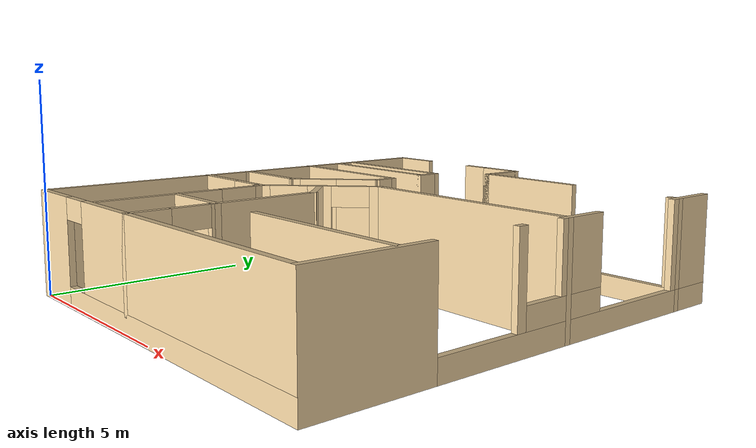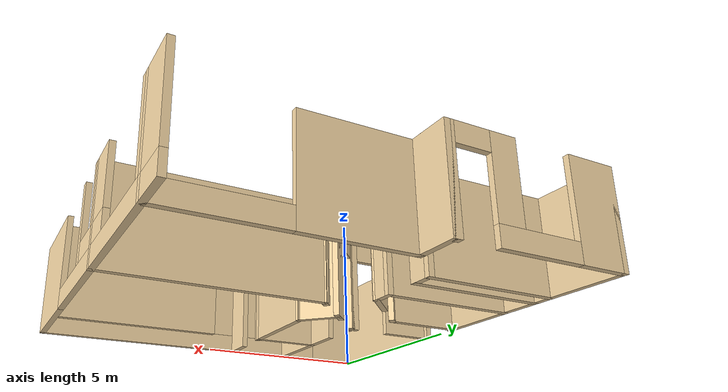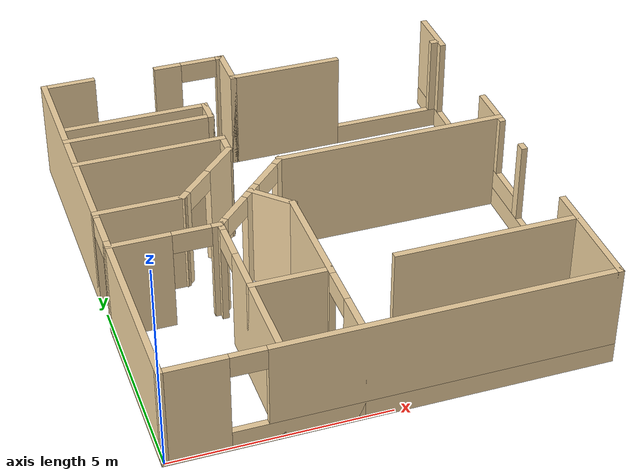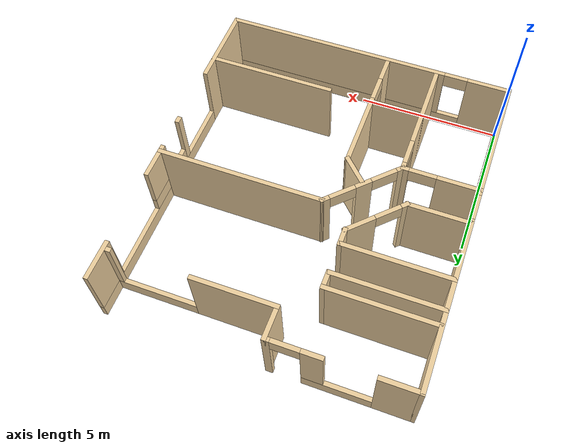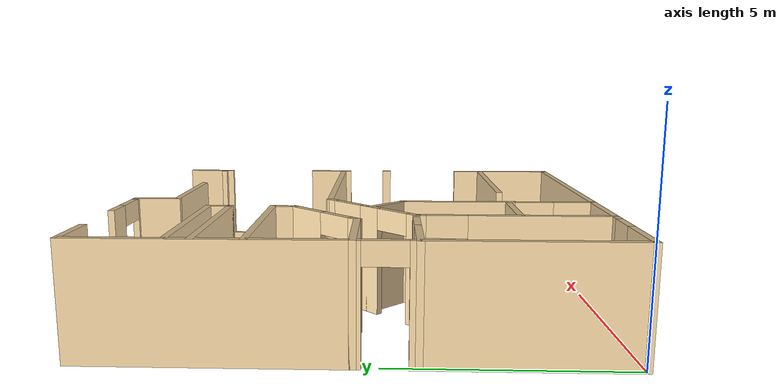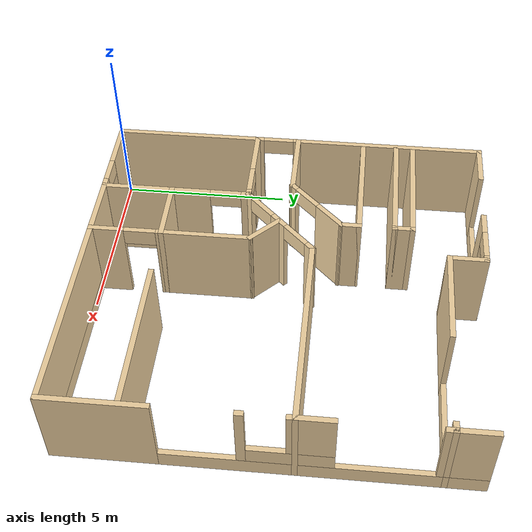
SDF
<?xml version='1.0'?>
<sdf version='1.6'>
  <model name='home'>
    <pose frame=''>5 5.5 0 0 -0 0</pose>
    <link name='Wall_12'>
      <pose frame=''>5 -0 0 0 -0 1.5708</pose>
      <visual name='Wall_12_Visual_0'>
        <pose frame=''>-4.14478 0 1.25 0 -0 0</pose>
        <geometry>
          <box>
            <size>2.86043 0.15 2.5</size>
          </box>
        </geometry>
        <material>
          <script>
            <uri>file://media/materials/scripts/gazebo.material</uri>
            <name>Gazebo/Grey</name>
          </script>
          <ambient>0.921569 0.807843 0.615686 1</ambient>
        </material>
        <meta>
          <layer>0</layer>
        </meta>
      </visual>
      <collision name='Wall_12_Collision_0'>
        <geometry>
          <box>
            <size>2.86043 0.15 2.5</size>
          </box>
        </geometry>
        <pose frame=''>-4.14478 0 1.25 0 -0 0</pose>
      </collision>
      <visual name='Wall_12_Visual_1'>
        <pose frame=''>1.43022 0 0.25 0 -0 0</pose>
        <geometry>
          <box>
            <size>8.28957 0.15 0.5</size>
          </box>
        </geometry>
        <material>
          <script>
            <uri>file://media/materials/scripts/gazebo.material</uri>
            <name>Gazebo/Grey</name>
          </script>
          <ambient>0.921569 0.807843 0.615686 1</ambient>
        </material>
        <meta>
          <layer>0</layer>
        </meta>
      </visual>
      <collision name='Wall_12_Collision_1'>
        <geometry>
          <box>
            <size>8.28957 0.15 0.5</size>
          </box>
        </geometry>
        <pose frame=''>1.43022 0 0.25 0 -0 0</pose>
      </collision>
      <visual name='Wall_12_Visual_2'>
        <pose frame=''>-0.595004 0 1.5 0 -0 0</pose>
        <geometry>
          <box>
            <size>0.23913 0.15 2</size>
          </box>
        </geometry>
        <material>
          <script>
            <uri>file://media/materials/scripts/gazebo.material</uri>
            <name>Gazebo/Grey</name>
          </script>
          <ambient>0.921569 0.807843 0.615686 1</ambient>
        </material>
        <meta>
          <layer>0</layer>
        </meta>
      </visual>
      <collision name='Wall_12_Collision_2'>
        <geometry>
          <box>
            <size>0.23913 0.15 2</size>
          </box>
        </geometry>
        <pose frame=''>-0.595004 0 1.5 0 -0 0</pose>
      </collision>
      <visual name='Wall_12_Visual_3'>
        <pose frame=''>4.9125 0 1.5 0 -0 0</pose>
        <geometry>
          <box>
            <size>1.325 0.15 2</size>
          </box>
        </geometry>
        <material>
          <script>
            <uri>file://media/materials/scripts/gazebo.material</uri>
            <name>Gazebo/Grey</name>
          </script>
          <ambient>0.921569 0.807843 0.615686 1</ambient>
        </material>
        <meta>
          <layer>0</layer>
        </meta>
      </visual>
      <collision name='Wall_12_Collision_3'>
        <geometry>
          <box>
            <size>1.325 0.15 2</size>
          </box>
        </geometry>
        <pose frame=''>4.9125 0 1.5 0 -0 0</pose>
      </collision>
      <visual name='Wall_12_Visual_4'>
        <pose frame=''>0.637281 0 0.75 0 -0 0</pose>
        <geometry>
          <box>
            <size>2.22544 0.15 0.5</size>
          </box>
        </geometry>
        <material>
          <script>
            <uri>file://media/materials/scripts/gazebo.material</uri>
            <name>Gazebo/Grey</name>
          </script>
          <ambient>0.921569 0.807843 0.615686 1</ambient>
        </material>
        <meta>
          <layer>0</layer>
        </meta>
      </visual>
      <collision name='Wall_12_Collision_4'>
        <geometry>
          <box>
            <size>2.22544 0.15 0.5</size>
          </box>
        </geometry>
        <pose frame=''>0.637281 0 0.75 0 -0 0</pose>
      </collision>
      <visual name='Wall_12_Visual_5'>
        <pose frame=''>1.13728 0 1.75 0 -0 0</pose>
        <geometry>
          <box>
            <size>1.22544 0.15 1.5</size>
          </box>
        </geometry>
        <material>
          <script>
            <uri>file://media/materials/scripts/gazebo.material</uri>
            <name>Gazebo/Grey</name>
          </script>
          <ambient>0.921569 0.807843 0.615686 1</ambient>
        </material>
        <meta>
          <layer>0</layer>
        </meta>
      </visual>
      <collision name='Wall_12_Collision_5'>
        <geometry>
          <box>
            <size>1.22544 0.15 1.5</size>
          </box>
        </geometry>
        <pose frame=''>1.13728 0 1.75 0 -0 0</pose>
      </collision>
    </link>
    <link name='Wall_14'>
      <pose frame=''>-2.75 5.5 0 0 -0 0</pose>
      <visual name='Wall_14_Visual_0'>
        <pose frame=''>-1.6625 0 1.25 0 -0 0</pose>
        <geometry>
          <box>
            <size>1.325 0.15 2.5</size>
          </box>
        </geometry>
        <material>
          <script>
            <uri>file://media/materials/scripts/gazebo.material</uri>
            <name>Gazebo/Grey</name>
          </script>
          <ambient>0.921569 0.807843 0.615686 1</ambient>
        </material>
        <meta>
          <layer>0</layer>
        </meta>
      </visual>
      <collision name='Wall_14_Collision_0'>
        <geometry>
          <box>
            <size>1.325 0.15 2.5</size>
          </box>
        </geometry>
        <pose frame=''>-1.6625 0 1.25 0 -0 0</pose>
      </collision>
      <visual name='Wall_14_Visual_1'>
        <pose frame=''>2.20662 0 1.25 0 -0 0</pose>
        <geometry>
          <box>
            <size>0.236762 0.15 2.5</size>
          </box>
        </geometry>
        <material>
          <script>
            <uri>file://media/materials/scripts/gazebo.material</uri>
            <name>Gazebo/Grey</name>
          </script>
          <ambient>0.921569 0.807843 0.615686 1</ambient>
        </material>
        <meta>
          <layer>0</layer>
        </meta>
      </visual>
      <collision name='Wall_14_Collision_1'>
        <geometry>
          <box>
            <size>0.236762 0.15 2.5</size>
          </box>
        </geometry>
        <pose frame=''>2.20662 0 1.25 0 -0 0</pose>
      </collision>
      <visual name='Wall_14_Visual_2'>
        <pose frame=''>0.094119 0 0.25 0 -0 0</pose>
        <geometry>
          <box>
            <size>2.18824 0.15 0.5</size>
          </box>
        </geometry>
        <material>
          <script>
            <uri>file://media/materials/scripts/gazebo.material</uri>
            <name>Gazebo/Grey</name>
          </script>
          <ambient>0.921569 0.807843 0.615686 1</ambient>
        </material>
        <meta>
          <layer>0</layer>
        </meta>
      </visual>
      <collision name='Wall_14_Collision_2'>
        <geometry>
          <box>
            <size>2.18824 0.15 0.5</size>
          </box>
        </geometry>
        <pose frame=''>0.094119 0 0.25 0 -0 0</pose>
      </collision>
      <visual name='Wall_14_Visual_3'>
        <pose frame=''>0.844119 0 1.5 0 -0 0</pose>
        <geometry>
          <box>
            <size>0.688238 0.15 2</size>
          </box>
        </geometry>
        <material>
          <script>
            <uri>file://media/materials/scripts/gazebo.material</uri>
            <name>Gazebo/Grey</name>
          </script>
          <ambient>0.921569 0.807843 0.615686 1</ambient>
        </material>
        <meta>
          <layer>0</layer>
        </meta>
      </visual>
      <collision name='Wall_14_Collision_3'>
        <geometry>
          <box>
            <size>0.688238 0.15 2</size>
          </box>
        </geometry>
        <pose frame=''>0.844119 0 1.5 0 -0 0</pose>
      </collision>
      <visual name='Wall_14_Visual_4'>
        <pose frame=''>1.63824 0 2.25 0 -0 0</pose>
        <geometry>
          <box>
            <size>0.9 0.15 0.5</size>
          </box>
        </geometry>
        <material>
          <script>
            <uri>file://media/materials/scripts/gazebo.material</uri>
            <name>Gazebo/Grey</name>
          </script>
          <ambient>0.921569 0.807843 0.615686 1</ambient>
        </material>
        <meta>
          <layer>0</layer>
        </meta>
      </visual>
      <collision name='Wall_14_Collision_4'>
        <geometry>
          <box>
            <size>0.9 0.15 0.5</size>
          </box>
        </geometry>
        <pose frame=''>1.63824 0 2.25 0 -0 0</pose>
      </collision>
    </link>
    <link name='Wall_16'>
      <pose frame=''>-0 -5.5 0 0 -0 0</pose>
      <visual name='Wall_16_Visual_0'>
        <pose frame=''>-4.32369 0 1.25 0 -0 0</pose>
        <geometry>
          <box>
            <size>1.50261 0.15 2.5</size>
          </box>
        </geometry>
        <material>
          <script>
            <uri>file://media/materials/scripts/gazebo.material</uri>
            <name>Gazebo/Grey</name>
          </script>
          <ambient>0.921569 0.807843 0.615686 1</ambient>
        </material>
        <meta>
          <layer>0</layer>
        </meta>
      </visual>
      <collision name='Wall_16_Collision_0'>
        <geometry>
          <box>
            <size>1.50261 0.15 2.5</size>
          </box>
        </geometry>
        <pose frame=''>-4.32369 0 1.25 0 -0 0</pose>
      </collision>
      <visual name='Wall_16_Visual_1'>
        <pose frame=''>0.751305 0 0.25 0 -0 0</pose>
        <geometry>
          <box>
            <size>8.64739 0.15 0.5</size>
          </box>
        </geometry>
        <material>
          <script>
            <uri>file://media/materials/scripts/gazebo.material</uri>
            <name>Gazebo/Grey</name>
          </script>
          <ambient>0.921569 0.807843 0.615686 1</ambient>
        </material>
        <meta>
          <layer>0</layer>
        </meta>
      </visual>
      <collision name='Wall_16_Collision_1'>
        <geometry>
          <box>
            <size>8.64739 0.15 0.5</size>
          </box>
        </geometry>
        <pose frame=''>0.751305 0 0.25 0 -0 0</pose>
      </collision>
      <visual name='Wall_16_Visual_2'>
        <pose frame=''>1.15131 0 1.5 0 -0 0</pose>
        <geometry>
          <box>
            <size>7.84739 0.15 2</size>
          </box>
        </geometry>
        <material>
          <script>
            <uri>file://media/materials/scripts/gazebo.material</uri>
            <name>Gazebo/Grey</name>
          </script>
          <ambient>0.921569 0.807843 0.615686 1</ambient>
        </material>
        <meta>
          <layer>0</layer>
        </meta>
      </visual>
      <collision name='Wall_16_Collision_2'>
        <geometry>
          <box>
            <size>7.84739 0.15 2</size>
          </box>
        </geometry>
        <pose frame=''>1.15131 0 1.5 0 -0 0</pose>
      </collision>
      <visual name='Wall_16_Visual_3'>
        <pose frame=''>-3.17239 0 2.25 0 -0 0</pose>
        <geometry>
          <box>
            <size>0.8 0.15 0.5</size>
          </box>
        </geometry>
        <material>
          <script>
            <uri>file://media/materials/scripts/gazebo.material</uri>
            <name>Gazebo/Grey</name>
          </script>
          <ambient>0.921569 0.807843 0.615686 1</ambient>
        </material>
        <meta>
          <layer>0</layer>
        </meta>
      </visual>
      <collision name='Wall_16_Collision_3'>
        <geometry>
          <box>
            <size>0.8 0.15 0.5</size>
          </box>
        </geometry>
        <pose frame=''>-3.17239 0 2.25 0 -0 0</pose>
      </collision>
    </link>
    <link name='Wall_18'>
      <pose frame=''>-3.75 -1.25 0 0 -0 0</pose>
      <visual name='Wall_18_Visual_0'>
        <pose frame=''>-0.588671 0 1.25 0 -0 0</pose>
        <geometry>
          <box>
            <size>1.47266 0.15 2.5</size>
          </box>
        </geometry>
        <material>
          <script>
            <uri>file://media/materials/scripts/gazebo.material</uri>
            <name>Gazebo/Grey</name>
          </script>
          <ambient>0.921569 0.807843 0.615686 1</ambient>
        </material>
        <meta>
          <layer>0</layer>
        </meta>
      </visual>
      <collision name='Wall_18_Collision_0'>
        <geometry>
          <box>
            <size>1.47266 0.15 2.5</size>
          </box>
        </geometry>
        <pose frame=''>-0.588671 0 1.25 0 -0 0</pose>
      </collision>
      <visual name='Wall_18_Visual_1'>
        <pose frame=''>1.18633 0 1.25 0 -0 0</pose>
        <geometry>
          <box>
            <size>0.277343 0.15 2.5</size>
          </box>
        </geometry>
        <material>
          <script>
            <uri>file://media/materials/scripts/gazebo.material</uri>
            <name>Gazebo/Grey</name>
          </script>
          <ambient>0.921569 0.807843 0.615686 1</ambient>
        </material>
        <meta>
          <layer>0</layer>
        </meta>
      </visual>
      <collision name='Wall_18_Collision_1'>
        <geometry>
          <box>
            <size>0.277343 0.15 2.5</size>
          </box>
        </geometry>
        <pose frame=''>1.18633 0 1.25 0 -0 0</pose>
      </collision>
      <visual name='Wall_18_Visual_2'>
        <pose frame=''>0.597657 0 2.25 0 -0 0</pose>
        <geometry>
          <box>
            <size>0.9 0.15 0.5</size>
          </box>
        </geometry>
        <material>
          <script>
            <uri>file://media/materials/scripts/gazebo.material</uri>
            <name>Gazebo/Grey</name>
          </script>
          <ambient>0.921569 0.807843 0.615686 1</ambient>
        </material>
        <meta>
          <layer>0</layer>
        </meta>
      </visual>
      <collision name='Wall_18_Collision_2'>
        <geometry>
          <box>
            <size>0.9 0.15 0.5</size>
          </box>
        </geometry>
        <pose frame=''>0.597657 0 2.25 0 -0 0</pose>
      </collision>
    </link>
    <link name='Wall_20'>
      <pose frame=''>-2.25 0.75 0 0 -0 0.785398</pose>
      <visual name='Wall_20_Visual_0'>
        <pose frame=''>-0.994067 0 1.25 0 -0 0</pose>
        <geometry>
          <box>
            <size>0.283187 0.15 2.5</size>
          </box>
        </geometry>
        <material>
          <script>
            <uri>file://media/materials/scripts/gazebo.material</uri>
            <name>Gazebo/Grey</name>
          </script>
          <ambient>0.921569 0.807843 0.615686 1</ambient>
        </material>
        <meta>
          <layer>0</layer>
        </meta>
      </visual>
      <collision name='Wall_20_Collision_0'>
        <geometry>
          <box>
            <size>0.283187 0.15 2.5</size>
          </box>
        </geometry>
        <pose frame=''>-0.994067 0 1.25 0 -0 0</pose>
      </collision>
      <visual name='Wall_20_Visual_1'>
        <pose frame=''>0.591593 0 1.25 0 -0 0</pose>
        <geometry>
          <box>
            <size>1.08813 0.15 2.5</size>
          </box>
        </geometry>
        <material>
          <script>
            <uri>file://media/materials/scripts/gazebo.material</uri>
            <name>Gazebo/Grey</name>
          </script>
          <ambient>0.921569 0.807843 0.615686 1</ambient>
        </material>
        <meta>
          <layer>0</layer>
        </meta>
      </visual>
      <collision name='Wall_20_Collision_1'>
        <geometry>
          <box>
            <size>1.08813 0.15 2.5</size>
          </box>
        </geometry>
        <pose frame=''>0.591593 0 1.25 0 -0 0</pose>
      </collision>
      <visual name='Wall_20_Visual_2'>
        <pose frame=''>-0.402473 0 2.25 0 -0 0</pose>
        <geometry>
          <box>
            <size>0.9 0.15 0.5</size>
          </box>
        </geometry>
        <material>
          <script>
            <uri>file://media/materials/scripts/gazebo.material</uri>
            <name>Gazebo/Grey</name>
          </script>
          <ambient>0.921569 0.807843 0.615686 1</ambient>
        </material>
        <meta>
          <layer>0</layer>
        </meta>
      </visual>
      <collision name='Wall_20_Collision_2'>
        <geometry>
          <box>
            <size>0.9 0.15 0.5</size>
          </box>
        </geometry>
        <pose frame=''>-0.402473 0 2.25 0 -0 0</pose>
      </collision>
    </link>
    <link name='Wall_22'>
      <collision name='Wall_22_Collision'>
        <geometry>
          <box>
            <size>2.15 0.15 2.5</size>
          </box>
        </geometry>
        <pose frame=''>0 0 1.25 0 -0 0</pose>
      </collision>
      <visual name='Wall_22_Visual'>
        <pose frame=''>0 0 1.25 0 -0 0</pose>
        <geometry>
          <box>
            <size>2.15 0.15 2.5</size>
          </box>
        </geometry>
        <material>
          <script>
            <uri>file://media/materials/scripts/gazebo.material</uri>
            <name>Gazebo/Grey</name>
          </script>
          <ambient>0.921569 0.807843 0.615686 1</ambient>
        </material>
        <meta>
          <layer>0</layer>
        </meta>
      </visual>
      <pose frame=''>-4 -0 0 0 -0 0</pose>
    </link>
    <link name='Wall_24'>
      <pose frame=''>-2.5 -3.375 0 0 -0 -1.5708</pose>
      <visual name='Wall_24_Visual_0'>
        <pose frame=''>-2.05418 0 1.25 0 -0 0</pose>
        <geometry>
          <box>
            <size>0.291638 0.15 2.5</size>
          </box>
        </geometry>
        <material>
          <script>
            <uri>file://media/materials/scripts/gazebo.material</uri>
            <name>Gazebo/Grey</name>
          </script>
          <ambient>0.921569 0.807843 0.615686 1</ambient>
        </material>
        <meta>
          <layer>0</layer>
        </meta>
      </visual>
      <collision name='Wall_24_Collision_0'>
        <geometry>
          <box>
            <size>0.291638 0.15 2.5</size>
          </box>
        </geometry>
        <pose frame=''>-2.05418 0 1.25 0 -0 0</pose>
      </collision>
      <visual name='Wall_24_Visual_1'>
        <pose frame=''>0.595819 0 1.25 0 -0 0</pose>
        <geometry>
          <box>
            <size>3.20836 0.15 2.5</size>
          </box>
        </geometry>
        <material>
          <script>
            <uri>file://media/materials/scripts/gazebo.material</uri>
            <name>Gazebo/Grey</name>
          </script>
          <ambient>0.921569 0.807843 0.615686 1</ambient>
        </material>
        <meta>
          <layer>0</layer>
        </meta>
      </visual>
      <collision name='Wall_24_Collision_1'>
        <geometry>
          <box>
            <size>3.20836 0.15 2.5</size>
          </box>
        </geometry>
        <pose frame=''>0.595819 0 1.25 0 -0 0</pose>
      </collision>
      <visual name='Wall_24_Visual_2'>
        <pose frame=''>-1.45836 0 2.25 0 -0 0</pose>
        <geometry>
          <box>
            <size>0.9 0.15 0.5</size>
          </box>
        </geometry>
        <material>
          <script>
            <uri>file://media/materials/scripts/gazebo.material</uri>
            <name>Gazebo/Grey</name>
          </script>
          <ambient>0.921569 0.807843 0.615686 1</ambient>
        </material>
        <meta>
          <layer>0</layer>
        </meta>
      </visual>
      <collision name='Wall_24_Collision_2'>
        <geometry>
          <box>
            <size>0.9 0.15 0.5</size>
          </box>
        </geometry>
        <pose frame=''>-1.45836 0 2.25 0 -0 0</pose>
      </collision>
    </link>
    <link name='Wall_26'>
      <pose frame=''>-1.5 -0.25 0 0 -0 0.785398</pose>
      <visual name='Wall_26_Visual_0'>
        <pose frame=''>-1.34261 0 1.25 0 -0 0</pose>
        <geometry>
          <box>
            <size>0.293202 0.15 2.5</size>
          </box>
        </geometry>
        <material>
          <script>
            <uri>file://media/materials/scripts/gazebo.material</uri>
            <name>Gazebo/Grey</name>
          </script>
          <ambient>0.921569 0.807843 0.615686 1</ambient>
        </material>
        <meta>
          <layer>0</layer>
        </meta>
      </visual>
      <collision name='Wall_26_Collision_0'>
        <geometry>
          <box>
            <size>0.293202 0.15 2.5</size>
          </box>
        </geometry>
        <pose frame=''>-1.34261 0 1.25 0 -0 0</pose>
      </collision>
      <visual name='Wall_26_Visual_1'>
        <pose frame=''>-0.014156 0 1.25 0 -0 0</pose>
        <geometry>
          <box>
            <size>0.563711 0.15 2.5</size>
          </box>
        </geometry>
        <material>
          <script>
            <uri>file://media/materials/scripts/gazebo.material</uri>
            <name>Gazebo/Grey</name>
          </script>
          <ambient>0.921569 0.807843 0.615686 1</ambient>
        </material>
        <meta>
          <layer>0</layer>
        </meta>
      </visual>
      <collision name='Wall_26_Collision_1'>
        <geometry>
          <box>
            <size>0.563711 0.15 2.5</size>
          </box>
        </geometry>
        <pose frame=''>-0.014156 0 1.25 0 -0 0</pose>
      </collision>
      <visual name='Wall_26_Visual_2'>
        <pose frame=''>1.32846 0 1.25 0 -0 0</pose>
        <geometry>
          <box>
            <size>0.321513 0.15 2.5</size>
          </box>
        </geometry>
        <material>
          <script>
            <uri>file://media/materials/scripts/gazebo.material</uri>
            <name>Gazebo/Grey</name>
          </script>
          <ambient>0.921569 0.807843 0.615686 1</ambient>
        </material>
        <meta>
          <layer>0</layer>
        </meta>
      </visual>
      <collision name='Wall_26_Collision_2'>
        <geometry>
          <box>
            <size>0.321513 0.15 2.5</size>
          </box>
        </geometry>
        <pose frame=''>1.32846 0 1.25 0 -0 0</pose>
      </collision>
      <visual name='Wall_26_Visual_3'>
        <pose frame=''>-0.746011 0 2.25 0 -0 0</pose>
        <geometry>
          <box>
            <size>0.9 0.15 0.5</size>
          </box>
        </geometry>
        <material>
          <script>
            <uri>file://media/materials/scripts/gazebo.material</uri>
            <name>Gazebo/Grey</name>
          </script>
          <ambient>0.921569 0.807843 0.615686 1</ambient>
        </material>
        <meta>
          <layer>0</layer>
        </meta>
      </visual>
      <collision name='Wall_26_Collision_3'>
        <geometry>
          <box>
            <size>0.9 0.15 0.5</size>
          </box>
        </geometry>
        <pose frame=''>-0.746011 0 2.25 0 -0 0</pose>
      </collision>
      <visual name='Wall_26_Visual_4'>
        <pose frame=''>0.7177 0 2.25 0 -0 0</pose>
        <geometry>
          <box>
            <size>0.9 0.15 0.5</size>
          </box>
        </geometry>
        <material>
          <script>
            <uri>file://media/materials/scripts/gazebo.material</uri>
            <name>Gazebo/Grey</name>
          </script>
          <ambient>0.921569 0.807843 0.615686 1</ambient>
        </material>
        <meta>
          <layer>0</layer>
        </meta>
      </visual>
      <collision name='Wall_26_Collision_4'>
        <geometry>
          <box>
            <size>0.9 0.15 0.5</size>
          </box>
        </geometry>
        <pose frame=''>0.7177 0 2.25 0 -0 0</pose>
      </collision>
    </link>
    <link name='Wall_28'>
      <collision name='Wall_28_Collision'>
        <geometry>
          <box>
            <size>1.21066 0.15 2.5</size>
          </box>
        </geometry>
        <pose frame=''>0 0 1.25 0 -0 0</pose>
      </collision>
      <visual name='Wall_28_Visual'>
        <pose frame=''>0 0 1.25 0 -0 0</pose>
        <geometry>
          <box>
            <size>1.21066 0.15 2.5</size>
          </box>
        </geometry>
        <material>
          <script>
            <uri>file://media/materials/scripts/gazebo.material</uri>
            <name>Gazebo/Grey</name>
          </script>
          <ambient>0.921569 0.807843 0.615686 1</ambient>
        </material>
        <meta>
          <layer>0</layer>
        </meta>
      </visual>
      <pose frame=''>-1.125 -0.625 0 0 -0 -0.785398</pose>
    </link>
    <link name='Wall_30'>
      <pose frame=''>-0.75 -3.25 0 0 -0 -1.5708</pose>
      <visual name='Wall_30_Visual_0'>
        <pose frame=''>-0.959381 0 1.25 0 -0 0</pose>
        <geometry>
          <box>
            <size>2.73124 0.15 2.5</size>
          </box>
        </geometry>
        <material>
          <script>
            <uri>file://media/materials/scripts/gazebo.material</uri>
            <name>Gazebo/Grey</name>
          </script>
          <ambient>0.921569 0.807843 0.615686 1</ambient>
        </material>
        <meta>
          <layer>0</layer>
        </meta>
      </visual>
      <collision name='Wall_30_Collision_0'>
        <geometry>
          <box>
            <size>2.73124 0.15 2.5</size>
          </box>
        </geometry>
        <pose frame=''>-0.959381 0 1.25 0 -0 0</pose>
      </collision>
      <visual name='Wall_30_Visual_1'>
        <pose frame=''>1.81562 0 1.25 0 -0 0</pose>
        <geometry>
          <box>
            <size>1.01876 0.15 2.5</size>
          </box>
        </geometry>
        <material>
          <script>
            <uri>file://media/materials/scripts/gazebo.material</uri>
            <name>Gazebo/Grey</name>
          </script>
          <ambient>0.921569 0.807843 0.615686 1</ambient>
        </material>
        <meta>
          <layer>0</layer>
        </meta>
      </visual>
      <collision name='Wall_30_Collision_1'>
        <geometry>
          <box>
            <size>1.01876 0.15 2.5</size>
          </box>
        </geometry>
        <pose frame=''>1.81562 0 1.25 0 -0 0</pose>
      </collision>
      <visual name='Wall_30_Visual_2'>
        <pose frame=''>0.856238 0 2.25 0 -0 0</pose>
        <geometry>
          <box>
            <size>0.9 0.15 0.5</size>
          </box>
        </geometry>
        <material>
          <script>
            <uri>file://media/materials/scripts/gazebo.material</uri>
            <name>Gazebo/Grey</name>
          </script>
          <ambient>0.921569 0.807843 0.615686 1</ambient>
        </material>
        <meta>
          <layer>0</layer>
        </meta>
      </visual>
      <collision name='Wall_30_Collision_2'>
        <geometry>
          <box>
            <size>0.9 0.15 0.5</size>
          </box>
        </geometry>
        <pose frame=''>0.856238 0 2.25 0 -0 0</pose>
      </collision>
    </link>
    <link name='Wall_32'>
      <collision name='Wall_32_Collision'>
        <geometry>
          <box>
            <size>5.65 0.15 2.5</size>
          </box>
        </geometry>
        <pose frame=''>0 0 1.25 0 -0 0</pose>
      </collision>
      <visual name='Wall_32_Visual'>
        <pose frame=''>0 0 1.25 0 -0 0</pose>
        <geometry>
          <box>
            <size>5.65 0.15 2.5</size>
          </box>
        </geometry>
        <material>
          <script>
            <uri>file://media/materials/scripts/gazebo.material</uri>
            <name>Gazebo/Grey</name>
          </script>
          <ambient>0.921569 0.807843 0.615686 1</ambient>
        </material>
        <meta>
          <layer>0</layer>
        </meta>
      </visual>
      <pose frame=''>2.25 0.75 0 0 -0 0</pose>
    </link>
    <link name='Wall_35'>
      <collision name='Wall_35_Collision'>
        <geometry>
          <box>
            <size>4.4 0.15 2.5</size>
          </box>
        </geometry>
        <pose frame=''>0 0 1.25 0 -0 0</pose>
      </collision>
      <visual name='Wall_35_Visual'>
        <pose frame=''>0 0 1.25 0 -0 0</pose>
        <geometry>
          <box>
            <size>4.4 0.15 2.5</size>
          </box>
        </geometry>
        <material>
          <script>
            <uri>file://media/materials/scripts/gazebo.material</uri>
            <name>Gazebo/Grey</name>
          </script>
          <ambient>0.921569 0.807843 0.615686 1</ambient>
        </material>
        <meta>
          <layer>0</layer>
        </meta>
      </visual>
      <pose frame=''>2.875 -3.5 0 0 -0 0</pose>
    </link>
    <link name='Wall_37'>
      <collision name='Wall_37_Collision'>
        <geometry>
          <box>
            <size>0.65 0.15 2.5</size>
          </box>
        </geometry>
        <pose frame=''>0 0 1.25 0 -0 0</pose>
      </collision>
      <visual name='Wall_37_Visual'>
        <pose frame=''>0 0 1.25 0 -0 0</pose>
        <geometry>
          <box>
            <size>0.65 0.15 2.5</size>
          </box>
        </geometry>
        <material>
          <script>
            <uri>file://media/materials/scripts/gazebo.material</uri>
            <name>Gazebo/Grey</name>
          </script>
          <ambient>0.921569 0.807843 0.615686 1</ambient>
        </material>
        <meta>
          <layer>0</layer>
        </meta>
      </visual>
      <pose frame=''>-1.5 1.75 0 0 -0 1.5708</pose>
    </link>
    <link name='Wall_39'>
      <collision name='Wall_39_Collision'>
        <geometry>
          <box>
            <size>1.9 0.15 2.5</size>
          </box>
        </geometry>
        <pose frame=''>0 0 1.25 0 -0 0</pose>
      </collision>
      <visual name='Wall_39_Visual'>
        <pose frame=''>0 0 1.25 0 -0 0</pose>
        <geometry>
          <box>
            <size>1.9 0.15 2.5</size>
          </box>
        </geometry>
        <material>
          <script>
            <uri>file://media/materials/scripts/gazebo.material</uri>
            <name>Gazebo/Grey</name>
          </script>
          <ambient>0.921569 0.807843 0.615686 1</ambient>
        </material>
        <meta>
          <layer>0</layer>
        </meta>
      </visual>
      <pose frame=''>-1.625 -3.5 0 0 -0 0</pose>
    </link>
    <link name='Wall_41'>
      <collision name='Wall_41_Collision'>
        <geometry>
          <box>
            <size>3.65 0.15 2.5</size>
          </box>
        </geometry>
        <pose frame=''>0 0 1.25 0 -0 0</pose>
      </collision>
      <visual name='Wall_41_Visual'>
        <pose frame=''>0 0 1.25 0 -0 0</pose>
        <geometry>
          <box>
            <size>3.65 0.15 2.5</size>
          </box>
        </geometry>
        <material>
          <script>
            <uri>file://media/materials/scripts/gazebo.material</uri>
            <name>Gazebo/Grey</name>
          </script>
          <ambient>0.921569 0.807843 0.615686 1</ambient>
        </material>
        <meta>
          <layer>0</layer>
        </meta>
      </visual>
      <pose frame=''>-3.25 2 0 0 -0 3.14159</pose>
    </link>
    <link name='Wall_43'>
      <collision name='Wall_43_Collision'>
        <geometry>
          <box>
            <size>3.65 0.15 2.5</size>
          </box>
        </geometry>
        <pose frame=''>0 0 1.25 0 -0 0</pose>
      </collision>
      <visual name='Wall_43_Visual'>
        <pose frame=''>0 0 1.25 0 -0 0</pose>
        <geometry>
          <box>
            <size>3.65 0.15 2.5</size>
          </box>
        </geometry>
        <material>
          <script>
            <uri>file://media/materials/scripts/gazebo.material</uri>
            <name>Gazebo/Grey</name>
          </script>
          <ambient>0.921569 0.807843 0.615686 1</ambient>
        </material>
        <meta>
          <layer>0</layer>
        </meta>
      </visual>
      <pose frame=''>-3.25 3 0 0 -0 0</pose>
    </link>
    <link name='Wall_45'>
      <collision name='Wall_45_Collision'>
        <geometry>
          <box>
            <size>0.65 0.15 2.5</size>
          </box>
        </geometry>
        <pose frame=''>0 0 1.25 0 -0 0</pose>
      </collision>
      <visual name='Wall_45_Visual'>
        <pose frame=''>0 0 1.25 0 -0 0</pose>
        <geometry>
          <box>
            <size>0.65 0.15 2.5</size>
          </box>
        </geometry>
        <material>
          <script>
            <uri>file://media/materials/scripts/gazebo.material</uri>
            <name>Gazebo/Grey</name>
          </script>
          <ambient>0.921569 0.807843 0.615686 1</ambient>
        </material>
        <meta>
          <layer>0</layer>
        </meta>
      </visual>
      <pose frame=''>-1.5 3.25 0 0 -0 1.5708</pose>
    </link>
    <link name='Wall_47'>
      <collision name='Wall_47_Collision'>
        <geometry>
          <box>
            <size>3.65 0.15 2.5</size>
          </box>
        </geometry>
        <pose frame=''>0 0 1.25 0 -0 0</pose>
      </collision>
      <visual name='Wall_47_Visual'>
        <pose frame=''>0 0 1.25 0 -0 0</pose>
        <geometry>
          <box>
            <size>3.65 0.15 2.5</size>
          </box>
        </geometry>
        <material>
          <script>
            <uri>file://media/materials/scripts/gazebo.material</uri>
            <name>Gazebo/Grey</name>
          </script>
          <ambient>0.921569 0.807843 0.615686 1</ambient>
        </material>
        <meta>
          <layer>0</layer>
        </meta>
      </visual>
      <pose frame=''>-3.25 3.5 0 0 -0 3.14159</pose>
    </link>
    <link name='Wall_49'>
      <collision name='Wall_49_Collision'>
        <geometry>
          <box>
            <size>1.15 0.15 2.5</size>
          </box>
        </geometry>
        <pose frame=''>0 0 1.25 0 -0 0</pose>
      </collision>
      <visual name='Wall_49_Visual'>
        <pose frame=''>0 0 1.25 0 -0 0</pose>
        <geometry>
          <box>
            <size>1.15 0.15 2.5</size>
          </box>
        </geometry>
        <material>
          <script>
            <uri>file://media/materials/scripts/gazebo.material</uri>
            <name>Gazebo/Grey</name>
          </script>
          <ambient>0.921569 0.807843 0.615686 1</ambient>
        </material>
        <meta>
          <layer>0</layer>
        </meta>
      </visual>
      <pose frame=''>-0.5 5 0 0 -0 -1.5708</pose>
    </link>
    <link name='Wall_51'>
      <pose frame=''>2.25 4.5 0 0 -0 0</pose>
      <visual name='Wall_51_Visual_0'>
        <pose frame=''>-1.4125 0 1.25 0 -0 0</pose>
        <geometry>
          <box>
            <size>2.825 0.15 2.5</size>
          </box>
        </geometry>
        <material>
          <script>
            <uri>file://media/materials/scripts/gazebo.material</uri>
            <name>Gazebo/Grey</name>
          </script>
          <ambient>0.921569 0.807843 0.615686 1</ambient>
        </material>
        <meta>
          <layer>0</layer>
        </meta>
      </visual>
      <collision name='Wall_51_Collision_0'>
        <geometry>
          <box>
            <size>2.825 0.15 2.5</size>
          </box>
        </geometry>
        <pose frame=''>-1.4125 0 1.25 0 -0 0</pose>
      </collision>
      <visual name='Wall_51_Visual_1'>
        <pose frame=''>1.4125 0 0.25 0 -0 0</pose>
        <geometry>
          <box>
            <size>2.825 0.15 0.5</size>
          </box>
        </geometry>
        <material>
          <script>
            <uri>file://media/materials/scripts/gazebo.material</uri>
            <name>Gazebo/Grey</name>
          </script>
          <ambient>0.921569 0.807843 0.615686 1</ambient>
        </material>
        <meta>
          <layer>0</layer>
        </meta>
      </visual>
      <collision name='Wall_51_Collision_1'>
        <geometry>
          <box>
            <size>2.825 0.15 0.5</size>
          </box>
        </geometry>
        <pose frame=''>1.4125 0 0.25 0 -0 0</pose>
      </collision>
      <visual name='Wall_51_Visual_2'>
        <pose frame=''>2.6625 0 1.5 0 -0 0</pose>
        <geometry>
          <box>
            <size>0.325 0.15 2</size>
          </box>
        </geometry>
        <material>
          <script>
            <uri>file://media/materials/scripts/gazebo.material</uri>
            <name>Gazebo/Grey</name>
          </script>
          <ambient>0.921569 0.807843 0.615686 1</ambient>
        </material>
        <meta>
          <layer>0</layer>
        </meta>
      </visual>
      <collision name='Wall_51_Collision_2'>
        <geometry>
          <box>
            <size>0.325 0.15 2</size>
          </box>
        </geometry>
        <pose frame=''>2.6625 0 1.5 0 -0 0</pose>
      </collision>
    </link>
    <link name='Wall_8'>
      <pose frame=''>-5 -0 0 0 -0 1.5708</pose>
      <visual name='Wall_8_Visual_0'>
        <pose frame=''>-3.31669 0 1.25 0 -0 0</pose>
        <geometry>
          <box>
            <size>4.51662 0.15 2.5</size>
          </box>
        </geometry>
        <material>
          <script>
            <uri>file://media/materials/scripts/gazebo.material</uri>
            <name>Gazebo/Grey</name>
          </script>
          <ambient>0.921569 0.807843 0.615686 1</ambient>
        </material>
        <meta>
          <layer>0</layer>
        </meta>
      </visual>
      <collision name='Wall_8_Collision_0'>
        <geometry>
          <box>
            <size>4.51662 0.15 2.5</size>
          </box>
        </geometry>
        <pose frame=''>-3.31669 0 1.25 0 -0 0</pose>
      </collision>
      <visual name='Wall_8_Visual_1'>
        <pose frame=''>2.70831 0 1.25 0 -0 0</pose>
        <geometry>
          <box>
            <size>5.73338 0.15 2.5</size>
          </box>
        </geometry>
        <material>
          <script>
            <uri>file://media/materials/scripts/gazebo.material</uri>
            <name>Gazebo/Grey</name>
          </script>
          <ambient>0.921569 0.807843 0.615686 1</ambient>
        </material>
        <meta>
          <layer>0</layer>
        </meta>
      </visual>
      <collision name='Wall_8_Collision_1'>
        <geometry>
          <box>
            <size>5.73338 0.15 2.5</size>
          </box>
        </geometry>
        <pose frame=''>2.70831 0 1.25 0 -0 0</pose>
      </collision>
      <visual name='Wall_8_Visual_2'>
        <pose frame=''>-0.608377 0 2.25 0 -0 0</pose>
        <geometry>
          <box>
            <size>0.9 0.15 0.5</size>
          </box>
        </geometry>
        <material>
          <script>
            <uri>file://media/materials/scripts/gazebo.material</uri>
            <name>Gazebo/Grey</name>
          </script>
          <ambient>0.921569 0.807843 0.615686 1</ambient>
        </material>
        <meta>
          <layer>0</layer>
        </meta>
      </visual>
      <collision name='Wall_8_Collision_2'>
        <geometry>
          <box>
            <size>0.9 0.15 0.5</size>
          </box>
        </geometry>
        <pose frame=''>-0.608377 0 2.25 0 -0 0</pose>
      </collision>
    </link>
    <static>1</static>
  </model>
</sdf>
